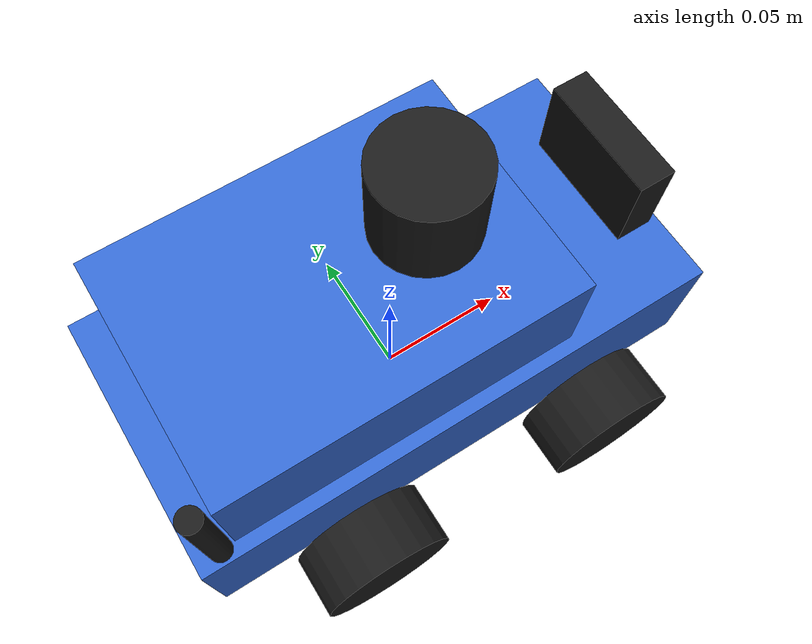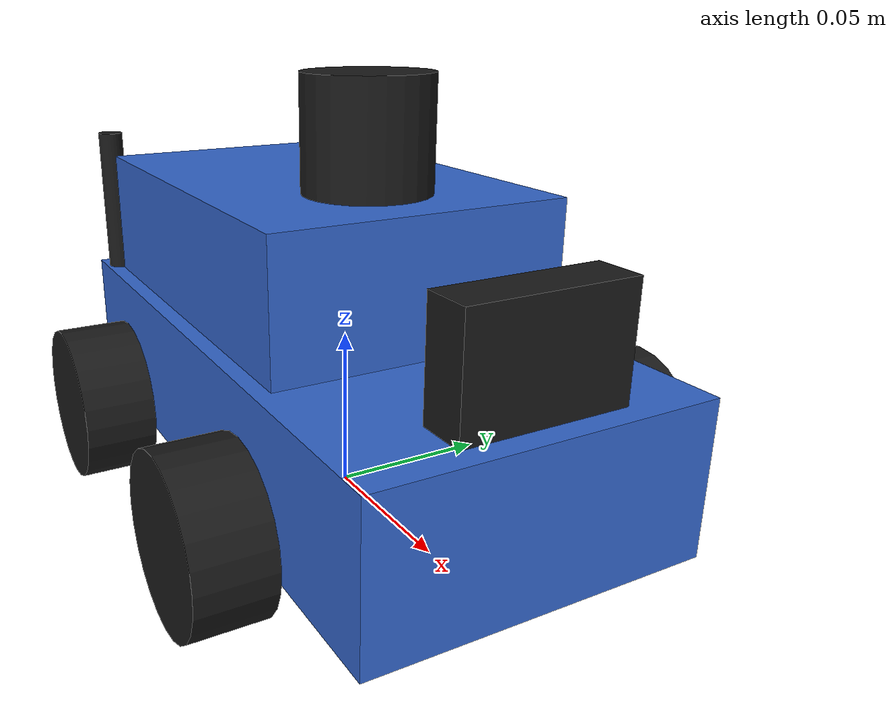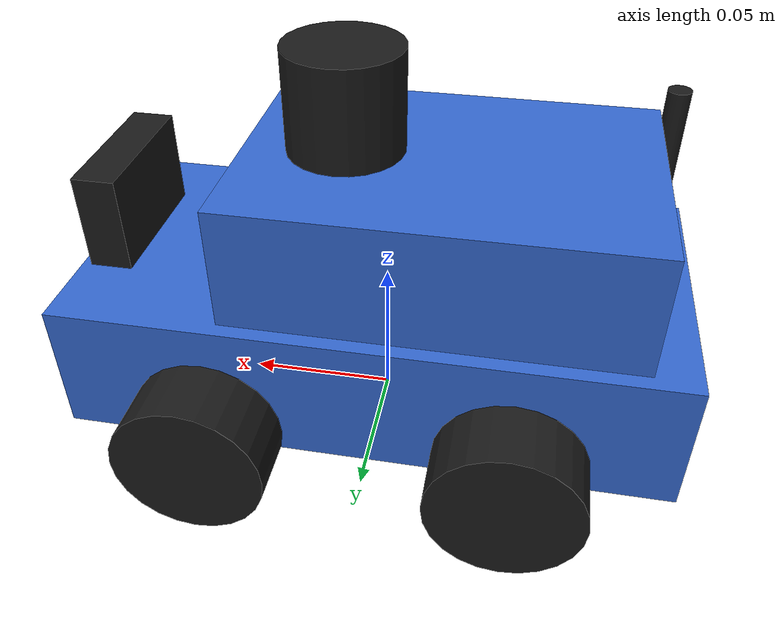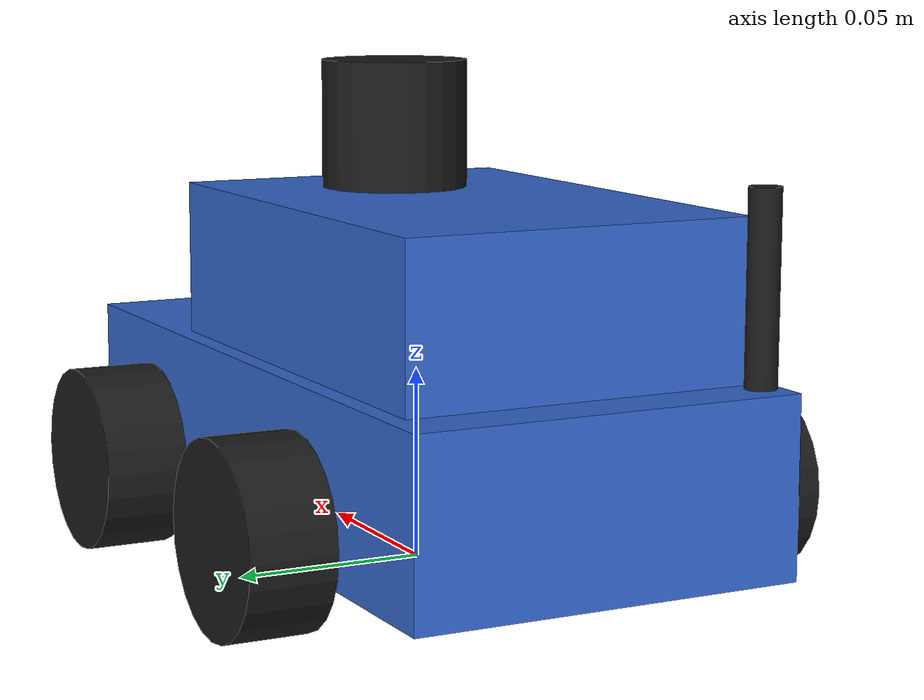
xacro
<?xml version="1.0"?>
<robot name="robotPro" xmlns:xacro="http://www.ros.org/wiki/xacro">

  <xacro:property name="rueda_radio" value="0.024"/>
  <xacro:property name="rueda_ancho" value="0.0215"/>
  <xacro:property name="separacion_ruedas" value="0.1315"/>
  <xacro:property name="distancia_ejes" value="0.095"/>

  <!-- Link en el piso: el robot spawnea con las ruedas apoyadas -->
  <link name="base_footprint"/>
  <joint name="joint_base" type="fixed">
    <parent link="base_footprint"/>
    <child link="base_link"/>
    <origin xyz="0 0 ${rueda_radio + 0.01}" rpy="0 0 0"/>  <!-- radio + 0.01 (las ruedas están 0.01 por debajo del centro del chasis) -->
  </joint>

  <link name="base_link">
    <!-- Chasis inferior -->
    <visual>
      <geometry><box size="0.1986 0.10 0.045"/></geometry>
      <material name="azul"><color rgba="0.2 0.4 0.8 1"/></material>
    </visual>
    <!-- Chasis superior -->
    <visual>
      <origin xyz="-0.02 0 0.0425" rpy="0 0 0"/>
      <geometry><box size="0.13 0.09 0.04"/></geometry>
      <material name="azul"><color rgba="0.2 0.4 0.8 1"/></material>
    </visual>
    <collision>
      <geometry><box size="0.1986 0.10 0.045"/></geometry>
    </collision>
    <collision>
      <origin xyz="-0.02 0 0.0425" rpy="0 0 0"/>
      <geometry><box size="0.13 0.09 0.04"/></geometry>
    </collision>
    <inertial>
      <mass value="0.75"/>
      <inertia ixx="0.0009" ixy="0.0" ixz="0.0" iyy="0.0026" iyz="0.0" izz="0.0032"/>
    </inertial>
  </link>

  <xacro:macro name="rueda" params="prefijo x_pos y_signo">
    <link name="rueda_${prefijo}">
      <visual>
        <geometry><cylinder radius="${rueda_radio}" length="${rueda_ancho}"/></geometry>
        <material name="negro"><color rgba="0.1 0.1 0.1 1"/></material>
      </visual>
      <collision>
        <geometry><cylinder radius="${rueda_radio}" length="${rueda_ancho}"/></geometry>
      </collision>
      <inertial>
        <mass value="0.05"/>
        <inertia ixx="0.00001" ixy="0.0" ixz="0.0" iyy="0.00001" iyz="0.0" izz="0.0000144"/>
      </inertial>
    </link>

    <joint name="joint_rueda_${prefijo}" type="continuous">
      <parent link="base_link"/>
      <child link="rueda_${prefijo}"/>
      <origin xyz="${x_pos} ${y_signo * separacion_ruedas/2} -0.01" rpy="-1.5708 0 0"/>
      <axis xyz="0 0 1"/>
    </joint>
  </xacro:macro>

  <xacro:rueda prefijo="izq_del" x_pos="${distancia_ejes/2}"  y_signo="1"/>
  <xacro:rueda prefijo="izq_tra" x_pos="${-distancia_ejes/2}" y_signo="1"/>
  <xacro:rueda prefijo="der_del" x_pos="${distancia_ejes/2}"  y_signo="-1"/>
  <xacro:rueda prefijo="der_tra" x_pos="${-distancia_ejes/2}" y_signo="-1"/>

  <!-- Skid-steer: en gz-sim se hace con DiffDrive poniendo 2 juntas por lado -->
  <gazebo>
    <plugin filename="gz-sim-diff-drive-system" name="gz::sim::systems::DiffDrive">
      <left_joint>joint_rueda_izq_del</left_joint>
      <left_joint>joint_rueda_izq_tra</left_joint>
      <right_joint>joint_rueda_der_del</right_joint>
      <right_joint>joint_rueda_der_tra</right_joint>
      <wheel_separation>${separacion_ruedas}</wheel_separation>
      <wheel_radius>${rueda_radio}</wheel_radius>
      <odom_publish_frequency>30</odom_publish_frequency>
      <topic>cmd_vel</topic>
      <odom_topic>odom</odom_topic>
      <frame_id>odom</frame_id>
      <child_frame_id>base_footprint</child_frame_id>
  </plugin>
  </gazebo>

<link name="lidar_link">
  <visual>
    <geometry><cylinder radius="0.0189" length="0.033"/></geometry>
    <material name="negro"><color rgba="0.1 0.1 0.1 1"/></material>
  </visual>
  <collision><geometry><cylinder radius="0.0189" length="0.033"/></geometry></collision>
  <inertial><mass value="0.04"/><inertia ixx="0.0000072" ixy="0" ixz="0" iyy="0.0000072" iyz="0" izz="0.0000071"/></inertial>
</link>
<joint name="joint_lidar" type="fixed">
  <parent link="base_link"/>
  <child link="lidar_link"/>
  <origin xyz="0.013 0 0.079" rpy="0 0 0"/>
</joint>

<link name="camera_link">
  <visual>
    <geometry><box size="0.014 0.048 0.032"/></geometry>
    <material name="negro"><color rgba="0.1 0.1 0.1 1"/></material>
  </visual>
  <collision><geometry><box size="0.017 0.048 0.032"/></geometry></collision>
  <inertial><mass value="0.0186"/><inertia ixx="0.0000052" ixy="0" ixz="0" iyy="0.0000019" iyz="0" izz="0.0000039"/></inertial>
</link>
<joint name="joint_camera" type="fixed">
  <parent link="base_link"/>
  <child link="camera_link"/>
  <origin xyz="0.088 0 0.04" rpy="0 0 0"/>  <!-- 0.0225 (techo del chasis) + 0.016 (mitad de los 32 mm de la cámara) + holgura por tilt-->
</joint>

<!-- Antena (solo por el visaje) -->
<link name="antena_link">
  <visual>
    <geometry><cylinder radius="0.004" length="0.08"/></geometry>
    <material name="negro"><color rgba="0.1 0.1 0.1 1"/></material>
  </visual>
  <inertial><mass value="0.01"/><inertia ixx="0.00001" ixy="0" ixz="0" iyy="0.00001" iyz="0" izz="0.00001"/></inertial>
</link>
<joint name="joint_antena" type="fixed">
  <parent link="base_link"/>
  <child link="antena_link"/>
  <origin xyz="-0.09 -0.045 0.03" rpy="0 0 0"/>
</joint>

  <gazebo reference="lidar_link">
    <sensor name="lidar" type="gpu_lidar">
      <gz_frame_id>lidar_link</gz_frame_id> <!-- sin esto el frame_id sería "lidar" -->
      <topic>scan</topic>
      <update_rate>10</update_rate>
      <lidar>
        <scan>
          <horizontal>
            <samples>450</samples>
            <min_angle>-3.14159</min_angle>
            <max_angle>3.14159</max_angle>
          </horizontal>
        </scan>
        <range>
          <min>0.03</min>
          <max>12.0</max>
        </range>
        <noise> <!-- Agregamos porque la ds menciona precisión de ±4 mm hasta 2 m y ±15 mm de 2 a 12 m.-->
          <type>gaussian</type>
          <mean>0.0</mean>
          <stddev>0.01</stddev>
        </noise>
      </lidar>
    </sensor>
  </gazebo>

  <gazebo reference="camera_link">
    <sensor name="camara" type="camera">
      <gz_frame_id>camera_link</gz_frame_id> <!-- también lo agregamos para que el frame_id que publica el sensor sea "camera_link" y no "camara" -->
      <topic>image_raw</topic>
      <update_rate>15</update_rate>
      <camera>
        <horizontal_fov>1.047</horizontal_fov>
        <image><width>640</width><height>480</height></image>
        <clip><near>0.1</near><far>20</far></clip>
        <noise>
          <type>gaussian</type>
          <mean>0.0</mean>
          <stddev>0.007</stddev>
        </noise>
      </camera>
    </sensor>
  </gazebo>

  <gazebo>
    <plugin filename="gz-sim-joint-state-publisher-system" name="gz::sim::systems::JointStatePublisher">
      <topic>joint_states</topic>
    </plugin>
  </gazebo>

</robot>
